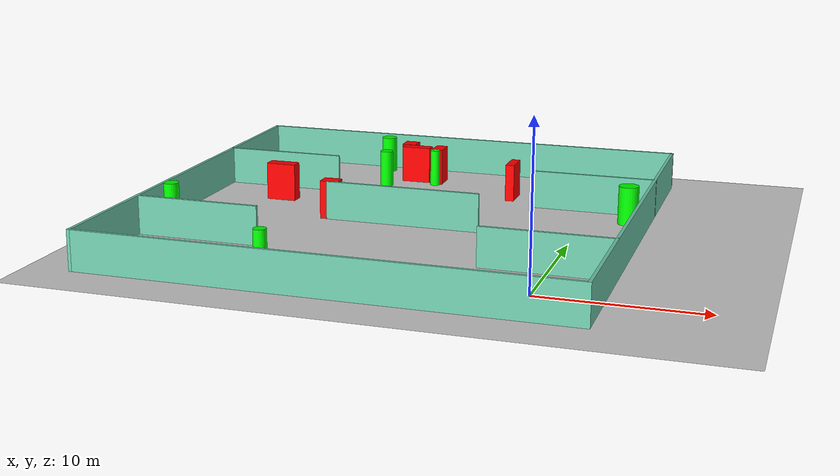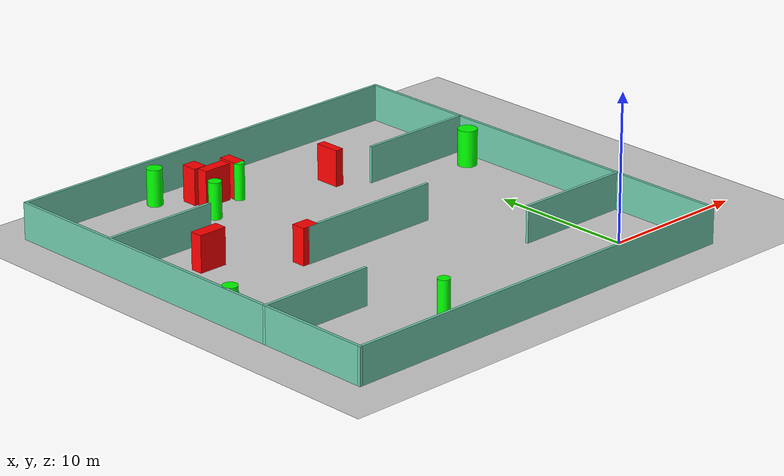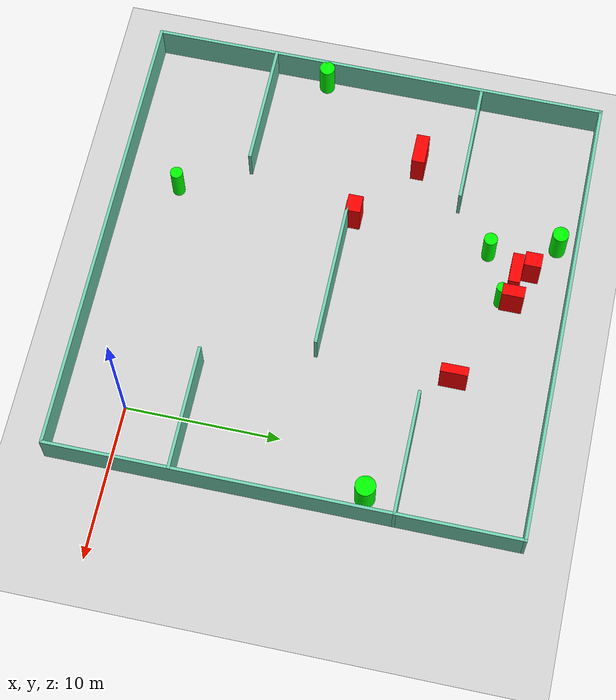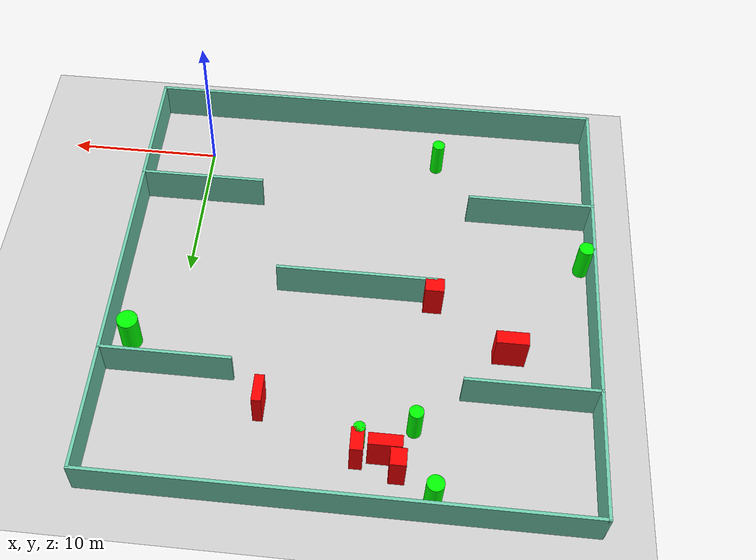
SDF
<sdf version="1.7">
 <world name="default">
  <light name="sun" type="directional">
   <pose>0 0 10 0 -0 0</pose>
   <diffuse>0.8 0.8 0.8 1</diffuse>
   <specular>0.2 0.2 0.2 1</specular>
   <attenuation>
    <range>1000</range>
    <constant>0.9</constant>
    <linear>0.01</linear>
    <quadratic>0.001</quadratic>
   </attenuation>
   <direction>-0.5 0.1 -0.9</direction>
   <spot><inner_angle>0</inner_angle><outer_angle>0</outer_angle><falloff>0</falloff></spot>
  </light>
  <model name="ground_plane">
   <static>1</static>
   <link name="link">
    <collision name="collision">
     <geometry><plane><normal>0 0 1</normal><size>100 100</size></plane></geometry>
     <surface>
      <contact><collide_bitmask>65535</collide_bitmask></contact>
      <friction><ode><mu>100</mu><mu2>50</mu2></ode></friction>
     </surface>
    </collision>
    <visual name="visual">
     <cast_shadows>0</cast_shadows>
     <geometry><plane><normal>0 0 1</normal><size>100 100</size></plane></geometry>
     <material>
      <script><uri>file://media/materials/scripts/gazebo.material</uri><name>Gazebo/Grey</name></script>
     </material>
    </visual>
   </link>
  </model>
  <gravity>0 0 -9.8</gravity>
  <magnetic_field>6e-06 2.3e-05 -4.2e-05</magnetic_field>
  <atmosphere type="adiabatic"/>
  <physics type="ode">
   <max_step_size>0.001</max_step_size>
   <real_time_factor>1</real_time_factor>
   <real_time_update_rate>1000</real_time_update_rate>
  </physics>
  <scene><ambient>0.4 0.4 0.4 1</ambient><background>0.7 0.7 0.7 1</background><shadows>1</shadows></scene>
  <spherical_coordinates>
   <surface_model>EARTH_WGS84</surface_model>
   <latitude_deg>0</latitude_deg>
   <longitude_deg>0</longitude_deg>
   <elevation>0</elevation>
   <heading_deg>0</heading_deg>
  </spherical_coordinates>
  <model name="my_base_walls">
   <link name="Wall_10">
    <collision name="Wall_10_Collision">
     <geometry><box><size>8.2 0.2 2.5</size></box></geometry>
     <pose>0 0 1.25 0 -0 0</pose>
    </collision>
    <visual name="Wall_10_Visual">
     <pose>0 0 1.25 0 -0 0</pose>
     <geometry><box><size>8.2 0.2 2.5</size></box></geometry>
     <material>
      <script><uri>file://media/materials/scripts/gazebo.material</uri><name>Gazebo/Grey</name></script>
      <ambient>0.435294 0.796078 0.67451 1</ambient>
     </material>
     <meta><layer>0</layer></meta>
    </visual>
    <pose>-11 -7 0 0 -0 0</pose>
   </link>
   <link name="Wall_12">
    <collision name="Wall_12_Collision">
     <geometry><box><size>8.2 0.2 2.5</size></box></geometry>
     <pose>0 0 1.25 0 -0 0</pose>
    </collision>
    <visual name="Wall_12_Visual">
     <pose>0 0 1.25 0 -0 0</pose>
     <geometry><box><size>8.2 0.2 2.5</size></box></geometry>
     <material>
      <script><uri>file://media/materials/scripts/gazebo.material</uri><name>Gazebo/Grey</name></script>
      <ambient>0.435294 0.796078 0.67451 1</ambient>
     </material>
     <meta><layer>0</layer></meta>
    </visual>
    <pose>-11 7 0 0 -0 0</pose>
   </link>
   <link name="Wall_14">
    <collision name="Wall_14_Collision">
     <geometry><box><size>8.2 0.2 2.5</size></box></geometry>
     <pose>0 0 1.25 0 -0 0</pose>
    </collision>
    <visual name="Wall_14_Visual">
     <pose>0 0 1.25 0 -0 0</pose>
     <geometry><box><size>8.2 0.2 2.5</size></box></geometry>
     <material>
      <script><uri>file://media/materials/scripts/gazebo.material</uri><name>Gazebo/Grey</name></script>
      <ambient>0.435294 0.796078 0.67451 1</ambient>
     </material>
     <meta><layer>0</layer></meta>
    </visual>
    <pose>11 7 0 0 -0 3.14159</pose>
   </link>
   <link name="Wall_16">
    <collision name="Wall_16_Collision">
     <geometry><box><size>10.2 0.2 2.5</size></box></geometry>
     <pose>0 0 1.25 0 -0 0</pose>
    </collision>
    <visual name="Wall_16_Visual">
     <pose>0 0 1.25 0 -0 0</pose>
     <geometry><box><size>10.2 0.2 2.5</size></box></geometry>
     <material>
      <script><uri>file://media/materials/scripts/gazebo.material</uri><name>Gazebo/Grey</name></script>
      <ambient>0.435294 0.796078 0.67451 1</ambient>
     </material>
     <meta><layer>0</layer></meta>
    </visual>
    <pose>0 0 0 0 -0 3.14159</pose>
   </link>
   <link name="Wall_2">
    <collision name="Wall_2_Collision">
     <geometry><box><size>30.2 0.2 2.5</size></box></geometry>
     <pose>0 0 1.25 0 -0 0</pose>
    </collision>
    <visual name="Wall_2_Visual">
     <pose>0 0 1.25 0 -0 0</pose>
     <geometry><box><size>30.2 0.2 2.5</size></box></geometry>
     <material>
      <script><uri>file://media/materials/scripts/gazebo.material</uri><name>Gazebo/Grey</name></script>
      <ambient>0.435294 0.796078 0.67451 1</ambient>
     </material>
     <meta><layer>0</layer></meta>
    </visual>
    <pose>0 -15 0 0 -0 3.14159</pose>
   </link>
   <link name="Wall_3">
    <collision name="Wall_3_Collision">
     <geometry><box><size>30.2 0.2 2.5</size></box></geometry>
     <pose>0 0 1.25 0 -0 0</pose>
    </collision>
    <visual name="Wall_3_Visual">
     <pose>0 0 1.25 0 -0 0</pose>
     <geometry><box><size>30.2 0.2 2.5</size></box></geometry>
     <material>
      <script><uri>file://media/materials/scripts/gazebo.material</uri><name>Gazebo/Grey</name></script>
      <ambient>0.435294 0.796078 0.67451 1</ambient>
     </material>
     <meta><layer>0</layer></meta>
    </visual>
    <pose>-15 0 0 0 -0 1.5708</pose>
   </link>
   <link name="Wall_4">
    <collision name="Wall_4_Collision">
     <geometry><box><size>30.2 0.2 2.5</size></box></geometry>
     <pose>0 0 1.25 0 -0 0</pose>
    </collision>
    <visual name="Wall_4_Visual">
     <pose>0 0 1.25 0 -0 0</pose>
     <geometry><box><size>30.2 0.2 2.5</size></box></geometry>
     <material>
      <script><uri>file://media/materials/scripts/gazebo.material</uri><name>Gazebo/Grey</name></script>
      <ambient>0.435294 0.796078 0.67451 1</ambient>
     </material>
     <meta><layer>0</layer></meta>
    </visual>
    <pose>0 15 0 0 -0 0</pose>
   </link>
   <link name="Wall_6">
    <collision name="Wall_6_Collision">
     <geometry><box><size>30.2 0.2 2.5</size></box></geometry>
     <pose>0 0 1.25 0 -0 0</pose>
    </collision>
    <visual name="Wall_6_Visual">
     <pose>0 0 1.25 0 -0 0</pose>
     <geometry><box><size>30.2 0.2 2.5</size></box></geometry>
     <material>
      <script><uri>file://media/materials/scripts/gazebo.material</uri><name>Gazebo/Grey</name></script>
      <ambient>0.435294 0.796078 0.67451 1</ambient>
     </material>
     <meta><layer>0</layer></meta>
    </visual>
    <pose>15 0 0 0 -0 1.5708</pose>
   </link>
   <link name="Wall_8">
    <collision name="Wall_8_Collision">
     <geometry><box><size>8.2 0.2 2.5</size></box></geometry>
     <pose>0 0 1.25 0 -0 0</pose>
    </collision>
    <visual name="Wall_8_Visual">
     <pose>0 0 1.25 0 -0 0</pose>
     <geometry><box><size>8.2 0.2 2.5</size></box></geometry>
     <material>
      <script><uri>file://media/materials/scripts/gazebo.material</uri><name>Gazebo/Grey</name></script>
      <ambient>0.435294 0.796078 0.67451 1</ambient>
     </material>
     <meta><layer>0</layer></meta>
    </visual>
    <pose>11 -7 0 0 -0 3.14159</pose>
   </link>
   <static>1</static>
   <pose>-11 11 0 0 -0 0</pose>
  </model>
  <model name="cylinder1">
   <static>1</static>
   <link name="link">
    <inertial>
     <mass>1</mass>
     <inertia><ixx>0.5</ixx><ixy>0</ixy><ixz>0</ixz><iyy>0.5</iyy><iyz>0</iyz><izz>1</izz></inertia>
    </inertial>
    <collision name="collision">
     <geometry><cylinder><radius>0.49912733456590797</radius><length>2.5</length></cylinder></geometry>
    </collision>
    <visual name="visual">
     <geometry><cylinder><radius>0.49912733456590797</radius><length>2.5</length></cylinder></geometry>
     <material>
      <ambient>0 1 0 1</ambient>
      <diffuse>0 1 0 1</diffuse>
      <specular>0.1 0.1 0.1 1</specular>
      <emissive>0 0 0 0</emissive>
     </material>
    </visual>
   </link>
   <pose>-25.519740610002856 7.572520800624888 1.25 0 0 0</pose>
  </model>
  <model name="cylinder2">
   <static>1</static>
   <link name="link">
    <inertial>
     <mass>1</mass>
     <inertia><ixx>0.5</ixx><ixy>0</ixy><ixz>0</ixz><iyy>0.5</iyy><iyz>0</iyz><izz>1</izz></inertia>
    </inertial>
    <collision name="collision">
     <geometry><cylinder><radius>0.5230003392297281</radius><length>2.5</length></cylinder></geometry>
    </collision>
    <visual name="visual">
     <geometry><cylinder><radius>0.5230003392297281</radius><length>2.5</length></cylinder></geometry>
     <material>
      <ambient>0 1 0 1</ambient>
      <diffuse>0 1 0 1</diffuse>
      <specular>0.1 0.1 0.1 1</specular>
      <emissive>0 0 0 0</emissive>
     </material>
    </visual>
   </link>
   <pose>-16.52390067957943 24.842340635900797 1.25 0 0 0</pose>
  </model>
  <model name="cylinder3">
   <static>1</static>
   <link name="link">
    <inertial>
     <mass>1</mass>
     <inertia><ixx>0.5</ixx><ixy>0</ixy><ixz>0</ixz><iyy>0.5</iyy><iyz>0</iyz><izz>1</izz></inertia>
    </inertial>
    <collision name="collision">
     <geometry><cylinder><radius>0.34993885552590714</radius><length>2.5</length></cylinder></geometry>
    </collision>
    <visual name="visual">
     <geometry><cylinder><radius>0.34993885552590714</radius><length>2.5</length></cylinder></geometry>
     <material>
      <ambient>0 1 0 1</ambient>
      <diffuse>0 1 0 1</diffuse>
      <specular>0.1 0.1 0.1 1</specular>
      <emissive>0 0 0 0</emissive>
     </material>
    </visual>
   </link>
   <pose>-12.049985731058992 21.79127782013618 1.25 0 0 0</pose>
  </model>
  <model name="cylinder4">
   <static>1</static>
   <link name="link">
    <inertial>
     <mass>1</mass>
     <inertia><ixx>0.5</ixx><ixy>0</ixy><ixz>0</ixz><iyy>0.5</iyy><iyz>0</iyz><izz>1</izz></inertia>
    </inertial>
    <collision name="collision">
     <geometry><cylinder><radius>0.43822366652375094</radius><length>2.5</length></cylinder></geometry>
    </collision>
    <visual name="visual">
     <geometry><cylinder><radius>0.43822366652375094</radius><length>2.5</length></cylinder></geometry>
     <material>
      <ambient>0 1 0 1</ambient>
      <diffuse>0 1 0 1</diffuse>
      <specular>0.1 0.1 0.1 1</specular>
      <emissive>0 0 0 0</emissive>
     </material>
    </visual>
   </link>
   <pose>-15.253719996495612 20.50017369575583 1.25 0 0 0</pose>
  </model>
  <model name="cylinder5">
   <static>1</static>
   <link name="link">
    <inertial>
     <mass>1</mass>
     <inertia><ixx>0.5</ixx><ixy>0</ixy><ixz>0</ixz><iyy>0.5</iyy><iyz>0</iyz><izz>1</izz></inertia>
    </inertial>
    <collision name="collision">
     <geometry><cylinder><radius>0.6524149029878581</radius><length>2.5</length></cylinder></geometry>
    </collision>
    <visual name="visual">
     <geometry><cylinder><radius>0.6524149029878581</radius><length>2.5</length></cylinder></geometry>
     <material>
      <ambient>0 1 0 1</ambient>
      <diffuse>0 1 0 1</diffuse>
      <specular>0.1 0.1 0.1 1</specular>
      <emissive>0 0 0 0</emissive>
     </material>
    </visual>
   </link>
   <pose>2.6650978057023487 15.9528249566952 1.25 0 0 0</pose>
  </model>
  <model name="cylinder6">
   <static>1</static>
   <link name="link">
    <inertial>
     <mass>1</mass>
     <inertia><ixx>0.5</ixx><ixy>0</ixy><ixz>0</ixz><iyy>0.5</iyy><iyz>0</iyz><izz>1</izz></inertia>
    </inertial>
    <collision name="collision">
     <geometry><cylinder><radius>0.41035155501030607</radius><length>2.5</length></cylinder></geometry>
    </collision>
    <visual name="visual">
     <geometry><cylinder><radius>0.41035155501030607</radius><length>2.5</length></cylinder></geometry>
     <material>
      <ambient>0 1 0 1</ambient>
      <diffuse>0 1 0 1</diffuse>
      <specular>0.1 0.1 0.1 1</specular>
      <emissive>0 0 0 0</emissive>
     </material>
    </visual>
   </link>
   <pose>-15.741579627024448 -0.4061823965310709 1.25 0 0 0</pose>
  </model>
  <model name="box1">
   <static>1</static>
   <link name="link">
    <inertial>
     <mass>1</mass>
     <inertia><ixx>0.083</ixx><ixy>0</ixy><ixz>0</ixz><iyy>0.083</iyy><iyz>0</iyz><izz>0.083</izz></inertia>
    </inertial>
    <collision name="collision">
     <geometry><box><size>0.9624055219094336 1.1023004118153314 2.5</size></box></geometry>
    </collision>
    <visual name="visual">
     <geometry><box><size>0.9624055219094336 1.1023004118153314 2.5</size></box></geometry>
     <material>
      <ambient>1 0 0 1</ambient>
      <diffuse>1 0 0 1</diffuse>
      <specular>0.1 0.1 0.1 1</specular>
      <emissive>0 0 0 0</emissive>
     </material>
    </visual>
    <sensor name="my_contact" type="contact">
     <contact><collision>box_collision</collision><topic>__default_topic__</topic></contact>
    </sensor>
   </link>
   <pose>-14.387879346380052 23.43257288241192 1.25 0 0 0</pose>
  </model>
  <model name="box2">
   <static>1</static>
   <link name="link">
    <inertial>
     <mass>1</mass>
     <inertia><ixx>0.083</ixx><ixy>0</ixy><ixz>0</ixz><iyy>0.083</iyy><iyz>0</iyz><izz>0.083</izz></inertia>
    </inertial>
    <collision name="collision">
     <geometry><box><size>0.7769766463302356 1.4434643468556219 2.5</size></box></geometry>
    </collision>
    <visual name="visual">
     <geometry><box><size>0.7769766463302356 1.4434643468556219 2.5</size></box></geometry>
     <material>
      <ambient>1 0 0 1</ambient>
      <diffuse>1 0 0 1</diffuse>
      <specular>0.1 0.1 0.1 1</specular>
      <emissive>0 0 0 0</emissive>
     </material>
    </visual>
    <sensor name="my_contact" type="contact">
     <contact><collision>box_collision</collision><topic>__default_topic__</topic></contact>
    </sensor>
   </link>
   <pose>-11.973913424291576 22.555523780275486 1.25 0 0 0</pose>
  </model>
  <model name="box3">
   <static>1</static>
   <link name="link">
    <inertial>
     <mass>1</mass>
     <inertia><ixx>0.083</ixx><ixy>0</ixy><ixz>0</ixz><iyy>0.083</iyy><iyz>0</iyz><izz>0.083</izz></inertia>
    </inertial>
    <collision name="collision">
     <geometry><box><size>2.0164806941764404 0.750364811081282 2.5</size></box></geometry>
    </collision>
    <visual name="visual">
     <geometry><box><size>2.0164806941764404 0.750364811081282 2.5</size></box></geometry>
     <material>
      <ambient>1 0 0 1</ambient>
      <diffuse>1 0 0 1</diffuse>
      <specular>0.1 0.1 0.1 1</specular>
      <emissive>0 0 0 0</emissive>
     </material>
    </visual>
    <sensor name="my_contact" type="contact">
     <contact><collision>box_collision</collision><topic>__default_topic__</topic></contact>
    </sensor>
   </link>
   <pose>-13.595648672468876 22.46265854651753 1.25 0 0 0</pose>
  </model>
  <model name="box4">
   <static>1</static>
   <link name="link">
    <inertial>
     <mass>1</mass>
     <inertia><ixx>0.083</ixx><ixy>0</ixy><ixz>0</ixz><iyy>0.083</iyy><iyz>0</iyz><izz>0.083</izz></inertia>
    </inertial>
    <collision name="collision">
     <geometry><box><size>1.1909270917578914 0.9726808066776197 2.5</size></box></geometry>
    </collision>
    <visual name="visual">
     <geometry><box><size>1.1909270917578914 0.9726808066776197 2.5</size></box></geometry>
     <material>
      <ambient>1 0 0 1</ambient>
      <diffuse>1 0 0 1</diffuse>
      <specular>0.1 0.1 0.1 1</specular>
      <emissive>0 0 0 0</emissive>
     </material>
    </visual>
    <sensor name="my_contact" type="contact">
     <contact><collision>box_collision</collision><topic>__default_topic__</topic></contact>
    </sensor>
   </link>
   <pose>-15.950998481675114 11.407808545562004 1.25 0 0 0</pose>
  </model>
  <model name="box5">
   <static>1</static>
   <link name="link">
    <inertial>
     <mass>1</mass>
     <inertia><ixx>0.083</ixx><ixy>0</ixy><ixz>0</ixz><iyy>0.083</iyy><iyz>0</iyz><izz>0.083</izz></inertia>
    </inertial>
    <collision name="collision">
     <geometry><box><size>0.5897474776924065 1.7614942933926534 2.5</size></box></geometry>
    </collision>
    <visual name="visual">
     <geometry><box><size>0.5897474776924065 1.7614942933926534 2.5</size></box></geometry>
     <material>
      <ambient>1 0 0 1</ambient>
      <diffuse>1 0 0 1</diffuse>
      <specular>0.1 0.1 0.1 1</specular>
      <emissive>0 0 0 0</emissive>
     </material>
    </visual>
    <sensor name="my_contact" type="contact">
     <contact><collision>box_collision</collision><topic>__default_topic__</topic></contact>
    </sensor>
   </link>
   <pose>-5.920440156244421 19.861891177838505 1.25 0 0 0</pose>
  </model>
  <model name="box6">
   <static>1</static>
   <link name="link">
    <inertial>
     <mass>1</mass>
     <inertia><ixx>0.083</ixx><ixy>0</ixy><ixz>0</ixz><iyy>0.083</iyy><iyz>0</iyz><izz>0.083</izz></inertia>
    </inertial>
    <collision name="collision">
     <geometry><box><size>2.003751190896793 0.8648105873454791 2.5</size></box></geometry>
    </collision>
    <visual name="visual">
     <geometry><box><size>2.003751190896793 0.8648105873454791 2.5</size></box></geometry>
     <material>
      <ambient>1 0 0 1</ambient>
      <diffuse>1 0 0 1</diffuse>
      <specular>0.1 0.1 0.1 1</specular>
      <emissive>0 0 0 0</emissive>
     </material>
    </visual>
    <sensor name="my_contact" type="contact">
     <contact><collision>box_collision</collision><topic>__default_topic__</topic></contact>
    </sensor>
   </link>
   <pose>-20.794998747313763 14.855106783703558 1.25 0 0 0</pose>
  </model>
 </world>
</sdf>
